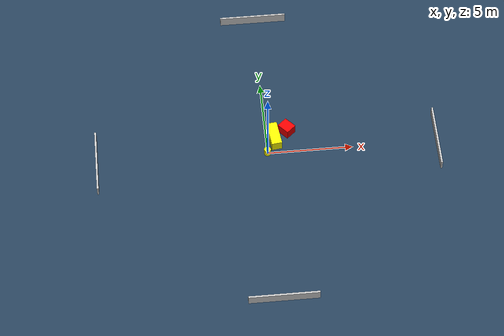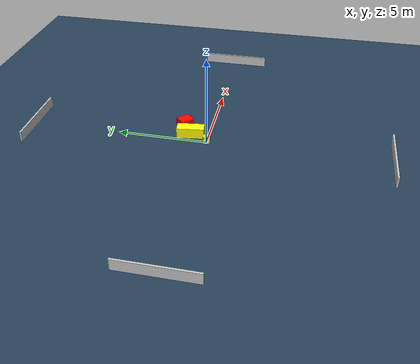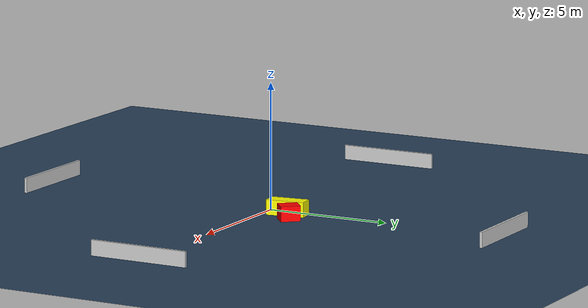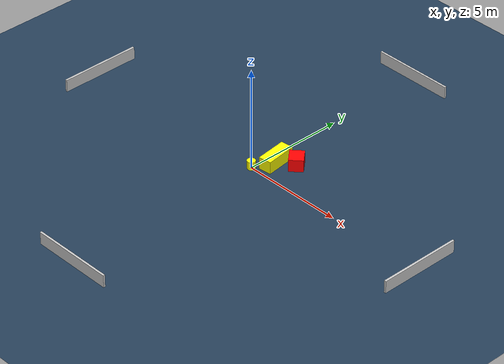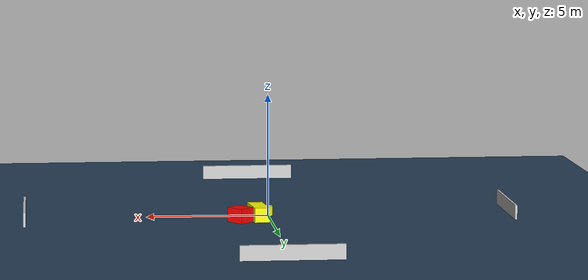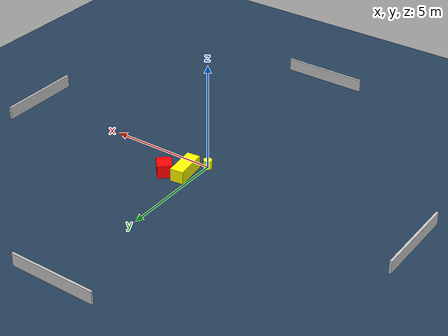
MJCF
<?xml version="1.0" ?>
<mujoco model="generated_environment">
  <option timestep="0.01" integrator="RK4" cone="elliptic"/>
  <default>
    <geom density="1"/>
  </default>
  <asset>
    <texture builtin="gradient" height="3072" name="skybox" rgb1="0.3 0.5 0.7" rgb2="0 0 0" type="skybox" width="512"/>
    <texture builtin="checker" height="300" name="groundplane" rgb1="0.2 0.3 0.4" rgb2="0.1 0.2 0.3" type="2d" width="300"/>
    <material name="groundplane" reflectance="0.2" texrepeat="5 5" texture="groundplane"/>
  </asset>
  <worldbody>
    <light dir="0 0 -1" directional="true" pos="0 0 1.5"/>
    <geom condim="3" friction="0.5 0.005 0.001" material="groundplane" name="floor" pos="0 0 0" size="0 0 0.05" type="plane"/>
    <body name="walls">
      <geom name="wall_1" condim="4" pos="-10.0 0.0 0.3" rgba="0.800000011920929 0.800000011920929 0.800000011920929 1.0" size="0.05 2.0 0.3" type="box"/>
      <geom name="wall_2" condim="4" pos="10.0 0.0 0.3" rgba="0.800000011920929 0.800000011920929 0.800000011920929 1.0" size="0.05 2.0 0.3" type="box"/>
      <geom name="wall_3" condim="4" pos="0.0 -10.0 0.3" rgba="0.800000011920929 0.800000011920929 0.800000011920929 1.0" size="2.0 0.05 0.3" type="box"/>
      <geom name="wall_4" condim="4" pos="0.0 10.0 0.3" rgba="0.800000011920929 0.800000011920929 0.800000011920929 1.0" size="2.0 0.05 0.3" type="box"/>
    </body>
    <body name="robot">
      <joint name="joint_x" type="slide" pos="0 0 0" axis="1 0 0"/>
      <joint name="joint_y" type="slide" pos="0 0 0" axis="0 1 0"/>
      <geom name="robot" type="cylinder" pos="0.0 0.0 0.2" size="0.2 0.2 0.0" mass="5.0" friction="1.0 0.005 0.0001" condim="4" rgba="1.0 1.0 0.0 1.0"/>
    </body>
    <body name="obstacle_1_movable">
      <geom name="obstacle_1_movable" condim="4" pos="0.48575166847717666 1.000215107593546 0.3" euler="0 0 7.071743431599682" friction="0.0 0.005 0.001" rgba="1.0 1.0 0.0 1.0" size="0.30869939594687407 0.7623686310574291 0.3" type="box" mass="0.1"/>
      <joint type="free"/>
    </body>
    <body name="obstacle_2_static">
      <geom name="obstacle_2_static" condim="4" pos="1.2629168822965267 1.482447003507501 0.3" euler="0 0 221.64391505338045" friction="0.0 0.005 0.001" rgba="1.0 0.0 0.0 1.0" size="0.33830196308787186 0.3896110021134023 0.3" type="box"/>
    </body>
  </worldbody>
  <actuator>
    <motor name="actuator_x" joint="joint_x" gear="1" ctrlrange="-1 1"/>
    <motor name="actuator_y" joint="joint_y" gear="1" ctrlrange="-1 1"/>
  </actuator>
</mujoco>
